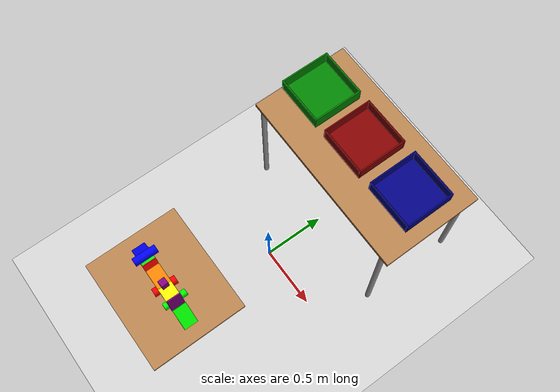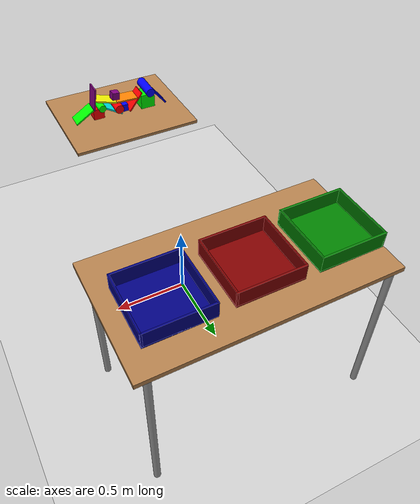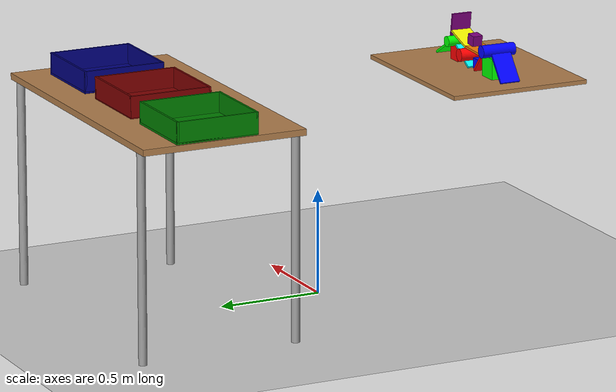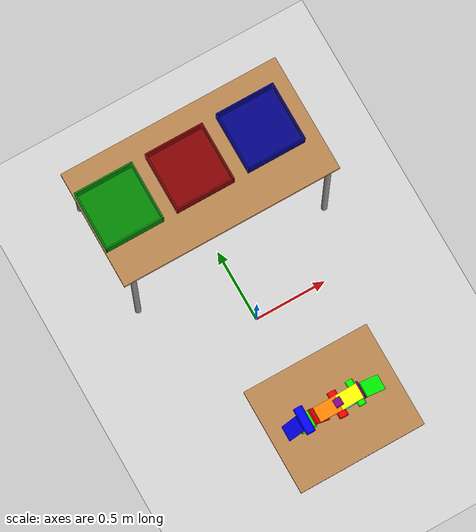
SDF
<sdf version="1.7">
 <world name="default">
  <light name="sun" type="directional">
   <pose>0 0 10 0 -0 0</pose>
   <diffuse>0.8 0.8 0.8 1</diffuse>
   <specular>0.2 0.2 0.2 1</specular>
   <attenuation>
    <range>1000</range>
    <constant>0.9</constant>
    <linear>0.01</linear>
    <quadratic>0.001</quadratic>
   </attenuation>
   <direction>-0.5 0.1 -0.9</direction>
   <spot><inner_angle>0</inner_angle><outer_angle>0</outer_angle><falloff>0</falloff></spot>
  </light>
  <model name="ground_plane">
   <static>1</static>
   <link name="link">
    <collision name="collision">
     <geometry><plane><normal>0 0 1</normal><size>100 100</size></plane></geometry>
     <surface><friction><ode><mu>100</mu><mu2>50</mu2></ode></friction></surface>
    </collision>
    <visual name="visual">
     <cast_shadows>0</cast_shadows>
     <geometry><plane><normal>0 0 1</normal><size>100 100</size></plane></geometry>
     <material>
      <script><uri>file://media/materials/scripts/gazebo.material</uri><name>Gazebo/Grey</name></script>
     </material>
    </visual>
   </link>
  </model>
  <gravity>0 0 -9.8</gravity>
  <magnetic_field>6e-06 2.3e-05 -4.2e-05</magnetic_field>
  <atmosphere type="adiabatic"/>
  <physics type="ode">
   <max_step_size>0.001</max_step_size>
   <real_time_factor>1</real_time_factor>
   <real_time_update_rate>1000</real_time_update_rate>
  </physics>
  <scene><ambient>0.4 0.4 0.4 1</ambient><background>0.7 0.7 0.7 1</background><shadows>1</shadows></scene>
  <audio><device>default</device></audio>
  <spherical_coordinates>
   <surface_model>EARTH_WGS84</surface_model>
   <latitude_deg>0</latitude_deg>
   <longitude_deg>0</longitude_deg>
   <elevation>0</elevation>
   <heading_deg>0</heading_deg>
  </spherical_coordinates>
  <model name="table">
   <static>1</static>
   <link name="link">
    <collision name="surface">
     <pose>0 0 1 0 -0 0</pose>
     <geometry><box><size>1.5 0.8 0.03</size></box></geometry>
     <surface>
      <friction><ode><mu>10</mu><mu2>5</mu2></ode></friction>
      <contact><ode><soft_cfm>0.0001</soft_cfm><soft_erp>0.4</soft_erp><kp>1e+06</kp><kd>10</kd></ode></contact>
     </surface>
    </collision>
    <visual name="visual1">
     <pose>0 0 1 0 -0 0</pose>
     <geometry><box><size>1.5 0.8 0.03</size></box></geometry>
     <material>
      <script><uri>file://media/materials/scripts/gazebo.material</uri><name>Gazebo/Wood</name></script>
     </material>
    </visual>
    <collision name="front_left_leg">
     <pose>0.68 0.38 0.5 0 -0 0</pose>
     <geometry><cylinder><radius>0.02</radius><length>1</length></cylinder></geometry>
    </collision>
    <visual name="front_left_leg">
     <pose>0.68 0.38 0.5 0 -0 0</pose>
     <geometry><cylinder><radius>0.02</radius><length>1</length></cylinder></geometry>
     <material>
      <script><uri>file://media/materials/scripts/gazebo.material</uri><name>Gazebo/Grey</name></script>
     </material>
    </visual>
    <collision name="front_right_leg">
     <pose>0.68 -0.38 0.5 0 -0 0</pose>
     <geometry><cylinder><radius>0.02</radius><length>1</length></cylinder></geometry>
    </collision>
    <visual name="front_right_leg">
     <pose>0.68 -0.38 0.5 0 -0 0</pose>
     <geometry><cylinder><radius>0.02</radius><length>1</length></cylinder></geometry>
     <material>
      <script><uri>file://media/materials/scripts/gazebo.material</uri><name>Gazebo/Grey</name></script>
     </material>
    </visual>
    <collision name="back_right_leg">
     <pose>-0.68 -0.38 0.5 0 -0 0</pose>
     <geometry><cylinder><radius>0.02</radius><length>1</length></cylinder></geometry>
    </collision>
    <visual name="back_right_leg">
     <pose>-0.68 -0.38 0.5 0 -0 0</pose>
     <geometry><cylinder><radius>0.02</radius><length>1</length></cylinder></geometry>
     <material>
      <script><uri>file://media/materials/scripts/gazebo.material</uri><name>Gazebo/Grey</name></script>
     </material>
    </visual>
    <collision name="back_left_leg">
     <pose>-0.68 0.38 0.5 0 -0 0</pose>
     <geometry><cylinder><radius>0.02</radius><length>1</length></cylinder></geometry>
    </collision>
    <visual name="back_left_leg">
     <pose>-0.68 0.38 0.5 0 -0 0</pose>
     <geometry><cylinder><radius>0.02</radius><length>1</length></cylinder></geometry>
     <material>
      <script><uri>file://media/materials/scripts/gazebo.material</uri><name>Gazebo/Grey</name></script>
     </material>
    </visual>
    <inertial>
     <inertia><ixx>1</ixx><ixy>0</ixy><ixz>0</ixz><iyy>1</iyy><iyz>0</iyz><izz>1</izz></inertia>
     <mass>50</mass>
    </inertial>
   </link>
   <pose>0.056083 0.801191 -1.2e-05 0 -0 2.5e-05</pose>
  </model>
  <plugin name="gazebo_link_attacher" filename="libgazebo_link_attacher.so"/>
  <plugin name="gazebo_ros_state" filename="libgazebo_ros_state.so">
   <namespace>/gazebo</namespace>
   <update_rate>100</update_rate>
  </plugin>
  <model name="cube_b">
   <link name="link_2">
    <inertial>
     <mass>2</mass>
     <inertia>
      <ixx>0.00083333</ixx>
      <ixy>0</ixy>
      <ixz>0</ixz>
      <iyy>0.00083333</iyy>
      <iyz>0</iyz>
      <izz>0.00083333</izz>
     </inertia>
    </inertial>
    <visual name="visual">
     <geometry><box><size>0.05 0.05 0.05</size></box></geometry>
     <material>
      <lighting>1</lighting>
      <script><uri>file://media/materials/scripts/gazebo.material</uri><name>Gazebo/Grey</name></script>
      <ambient>0 0 1 1</ambient>
      <diffuse>0 0 1 1</diffuse>
      <specular>0 0 0 1</specular>
      <emissive>0 0 0 1</emissive>
      <shader type="vertex"><normal_map>__default__</normal_map></shader>
     </material>
    </visual>
    <collision name="collision">
     <geometry><box><size>0.05 0.05 0.05</size></box></geometry>
     <surface>
      <friction>
       <ode><mu>0.8</mu><mu2>0.8</mu2><fdir1>0 0 0</fdir1><slip1>0</slip1><slip2>0</slip2></ode>
       <torsional>
        <coefficient>1</coefficient>
        <patch_radius>0</patch_radius>
        <surface_radius>0</surface_radius>
        <use_patch_radius>1</use_patch_radius>
        <ode><slip>0</slip></ode>
       </torsional>
      </friction>
      <bounce><restitution_coefficient>0</restitution_coefficient><threshold>1e+06</threshold></bounce>
      <contact>
       <collide_without_contact>0</collide_without_contact>
       <collide_without_contact_bitmask>1</collide_without_contact_bitmask>
       <collide_bitmask>1</collide_bitmask>
       <ode>
        <soft_cfm>0.0001</soft_cfm>
        <soft_erp>0.4</soft_erp>
        <kp>1e+06</kp>
        <kd>10</kd>
        <max_vel>0.01</max_vel>
        <min_depth>0</min_depth>
       </ode>
      </contact>
     </surface>
    </collision>
   </link>
   <static>0</static>
   <allow_auto_disable>0</allow_auto_disable>
   <pose>0.01211 -0.858134 1.01062 -1.56942 -0.004193 -0.021642</pose>
  </model>
  <model name="cube_g">
   <link name="link_2">
    <inertial>
     <mass>2</mass>
     <inertia>
      <ixx>0.00333333</ixx>
      <iyy>0.00333333</iyy>
      <izz>0.00333333</izz>
      <ixy>0</ixy>
      <ixz>0</ixz>
      <iyz>0</iyz>
     </inertia>
    </inertial>
    <visual name="visual">
     <geometry><box><size>0.1 0.1 0.1</size></box></geometry>
     <material>
      <lighting>1</lighting>
      <script><uri>file://media/materials/scripts/gazebo.material</uri><name>Gazebo/Grey</name></script>
      <ambient>0 1 0 1</ambient>
      <diffuse>0 1 0 1</diffuse>
      <specular>0 0 0 1</specular>
      <emissive>0 0 0 1</emissive>
      <shader type="vertex"><normal_map>__default__</normal_map></shader>
     </material>
    </visual>
    <collision name="collision">
     <geometry><box><size>0.1 0.1 0.1</size></box></geometry>
     <surface>
      <friction>
       <ode><mu>0.8</mu><mu2>0.8</mu2><fdir1>0 0 0</fdir1><slip1>0</slip1><slip2>0</slip2></ode>
       <torsional>
        <coefficient>1</coefficient>
        <patch_radius>0</patch_radius>
        <surface_radius>0</surface_radius>
        <use_patch_radius>1</use_patch_radius>
        <ode><slip>0</slip></ode>
       </torsional>
      </friction>
      <bounce><restitution_coefficient>0</restitution_coefficient><threshold>1e+06</threshold></bounce>
      <contact>
       <collide_without_contact>0</collide_without_contact>
       <collide_without_contact_bitmask>1</collide_without_contact_bitmask>
       <collide_bitmask>1</collide_bitmask>
       <ode>
        <soft_cfm>0.0001</soft_cfm>
        <soft_erp>0.4</soft_erp>
        <kp>1e+06</kp>
        <kd>10</kd>
        <max_vel>0.01</max_vel>
        <min_depth>0</min_depth>
       </ode>
      </contact>
     </surface>
    </collision>
   </link>
   <static>0</static>
   <allow_auto_disable>0</allow_auto_disable>
   <pose>-0.151436 -0.857004 1.03494 0.001101 -0.00428 -0.00783</pose>
  </model>
  <model name="cube_r">
   <link name="link_2">
    <inertial>
     <mass>2</mass>
     <inertia>
      <ixx>0.001875</ixx>
      <ixy>0</ixy>
      <ixz>0</ixz>
      <iyy>0.001875</iyy>
      <iyz>0</iyz>
      <izz>0.001875</izz>
     </inertia>
    </inertial>
    <visual name="visual">
     <geometry><box><size>0.075 0.075 0.075</size></box></geometry>
     <material>
      <lighting>1</lighting>
      <script><uri>file://media/materials/scripts/gazebo.material</uri><name>Gazebo/Grey</name></script>
      <ambient>1 0 0 1</ambient>
      <diffuse>1 0 0 1</diffuse>
      <specular>0 0 0 1</specular>
      <emissive>0 0 0 1</emissive>
      <shader type="vertex"><normal_map>__default__</normal_map></shader>
     </material>
    </visual>
    <collision name="collision">
     <geometry><box><size>0.075 0.075 0.075</size></box></geometry>
     <surface>
      <friction>
       <ode><mu>0.8</mu><mu2>0.8</mu2><fdir1>0 0 0</fdir1><slip1>0</slip1><slip2>0</slip2></ode>
       <torsional>
        <coefficient>1</coefficient>
        <patch_radius>0</patch_radius>
        <surface_radius>0</surface_radius>
        <use_patch_radius>1</use_patch_radius>
        <ode><slip>0</slip></ode>
       </torsional>
      </friction>
      <bounce><restitution_coefficient>0</restitution_coefficient><threshold>1e+06</threshold></bounce>
      <contact>
       <collide_without_contact>0</collide_without_contact>
       <collide_without_contact_bitmask>1</collide_without_contact_bitmask>
       <collide_bitmask>1</collide_bitmask>
       <ode>
        <soft_cfm>0.0001</soft_cfm>
        <soft_erp>0.4</soft_erp>
        <kp>1e+06</kp>
        <kd>10</kd>
        <max_vel>0.01</max_vel>
        <min_depth>0</min_depth>
       </ode>
      </contact>
     </surface>
    </collision>
   </link>
   <static>0</static>
   <allow_auto_disable>0</allow_auto_disable>
   <pose>0.202892 -0.85932 1.02386 1.56725 -0.000335 1.56123</pose>
  </model>
  <model name="cylinder_r">
   <link name="link_0">
    <inertial>
     <mass>0.2</mass>
     <inertia>
      <ixx>0.0005267</ixx>
      <ixy>0</ixy>
      <ixz>0</ixz>
      <iyy>0.0005267</iyy>
      <iyz>0</iyz>
      <izz>9e-05</izz>
     </inertia>
    </inertial>
    <visual name="visual">
     <geometry><cylinder><radius>0.03</radius><length>0.17</length></cylinder></geometry>
     <material>
      <lighting>1</lighting>
      <script><uri>file://media/materials/scripts/gazebo.material</uri><name>Gazebo/Grey</name></script>
      <ambient>1 0 0 1</ambient>
      <diffuse>1 0 0 1</diffuse>
      <specular>0 0 0 1</specular>
      <emissive>0 0 0 1</emissive>
      <shader type="vertex"><normal_map>__default__</normal_map></shader>
     </material>
    </visual>
    <collision name="collision">
     <geometry><cylinder><radius>0.03</radius><length>0.17</length></cylinder></geometry>
     <surface>
      <friction>
       <ode><mu>0.5</mu><mu2>0.5</mu2><fdir1>0 0 0</fdir1><slip1>0</slip1><slip2>0</slip2></ode>
       <torsional>
        <coefficient>1</coefficient>
        <patch_radius>0</patch_radius>
        <surface_radius>0</surface_radius>
        <use_patch_radius>1</use_patch_radius>
        <ode><slip>0</slip></ode>
       </torsional>
      </friction>
      <bounce><restitution_coefficient>0</restitution_coefficient><threshold>1e+06</threshold></bounce>
      <contact>
       <collide_without_contact>0</collide_without_contact>
       <collide_without_contact_bitmask>1</collide_without_contact_bitmask>
       <collide_bitmask>1</collide_bitmask>
       <ode>
        <soft_cfm>0.0001</soft_cfm>
        <soft_erp>0.4</soft_erp>
        <kp>1e+06</kp>
        <kd>10</kd>
        <max_vel>0.01</max_vel>
        <min_depth>0</min_depth>
       </ode>
      </contact>
     </surface>
    </collision>
   </link>
   <static>0</static>
   <allow_auto_disable>0</allow_auto_disable>
   <pose>0.065226 -0.859797 1.04682 -1.57446 -0.043525 3.1054</pose>
  </model>
  <model name="cylinder_b">
   <link name="link_0">
    <inertial>
     <mass>0.2</mass>
     <inertia>
      <ixx>0.0005267</ixx>
      <ixy>0</ixy>
      <ixz>0</ixz>
      <iyy>0.0005267</iyy>
      <iyz>0</iyz>
      <izz>9e-05</izz>
     </inertia>
    </inertial>
    <visual name="visual">
     <geometry><cylinder><radius>0.03</radius><length>0.17</length></cylinder></geometry>
     <material>
      <lighting>1</lighting>
      <ambient>0 0 1 1</ambient>
      <diffuse>0 0 1 1</diffuse>
      <specular>0.1 0.1 0.1 1</specular>
      <emissive>0 0 0 1</emissive>
      <shader type="vertex"><normal_map>__default__</normal_map></shader>
     </material>
    </visual>
    <collision name="collision">
     <geometry><cylinder><radius>0.03</radius><length>0.17</length></cylinder></geometry>
     <surface>
      <friction>
       <ode><mu>0.4</mu><mu2>0.4</mu2><fdir1>0 0 0</fdir1><slip1>0</slip1><slip2>0</slip2></ode>
       <torsional>
        <coefficient>1</coefficient>
        <patch_radius>0</patch_radius>
        <surface_radius>0</surface_radius>
        <use_patch_radius>1</use_patch_radius>
        <ode><slip>0</slip></ode>
       </torsional>
      </friction>
      <bounce><restitution_coefficient>0</restitution_coefficient><threshold>1e+06</threshold></bounce>
      <contact>
       <collide_without_contact>0</collide_without_contact>
       <collide_without_contact_bitmask>1</collide_without_contact_bitmask>
       <collide_bitmask>1</collide_bitmask>
       <ode>
        <soft_cfm>0.0001</soft_cfm>
        <soft_erp>0.4</soft_erp>
        <kp>1e+06</kp>
        <kd>10</kd>
        <max_vel>0.01</max_vel>
        <min_depth>0</min_depth>
       </ode>
      </contact>
     </surface>
    </collision>
   </link>
   <static>0</static>
   <allow_auto_disable>0</allow_auto_disable>
   <pose>-0.161056 -0.853852 1.1149 -1.57428 -1.25124 3.13292</pose>
  </model>
  <model name="cylinder_g">
   <link name="link_0">
    <inertial>
     <mass>0.2</mass>
     <inertia>
      <ixx>0.0005129</ixx>
      <ixy>0</ixy>
      <ixz>0</ixz>
      <iyy>0.0005129</iyy>
      <iyz>0</iyz>
      <izz>6.25e-05</izz>
     </inertia>
    </inertial>
    <visual name="visual">
     <geometry><cylinder><radius>0.025</radius><length>0.17</length></cylinder></geometry>
     <material>
      <lighting>1</lighting>
      <ambient>0 1 0 1</ambient>
      <diffuse>0 1 0 1</diffuse>
      <specular>0.1 0.1 0.1 1</specular>
      <emissive>0 0 0 1</emissive>
      <shader type="vertex"><normal_map>__default__</normal_map></shader>
     </material>
    </visual>
    <collision name="collision">
     <geometry><cylinder><radius>0.025</radius><length>0.17</length></cylinder></geometry>
     <surface>
      <friction>
       <ode><mu>0.5</mu><mu2>0.5</mu2><fdir1>0 0 0</fdir1><slip1>0</slip1><slip2>0</slip2></ode>
       <torsional>
        <coefficient>1</coefficient>
        <patch_radius>0</patch_radius>
        <surface_radius>0</surface_radius>
        <use_patch_radius>1</use_patch_radius>
        <ode><slip>0</slip></ode>
       </torsional>
      </friction>
      <bounce><restitution_coefficient>0</restitution_coefficient><threshold>1e+06</threshold></bounce>
      <contact>
       <collide_without_contact>0</collide_without_contact>
       <collide_without_contact_bitmask>1</collide_without_contact_bitmask>
       <collide_bitmask>1</collide_bitmask>
       <ode>
        <soft_cfm>0.0001</soft_cfm>
        <soft_erp>0.4</soft_erp>
        <kp>1e+06</kp>
        <kd>10</kd>
        <max_vel>0.01</max_vel>
        <min_depth>0</min_depth>
       </ode>
      </contact>
     </surface>
    </collision>
   </link>
   <static>0</static>
   <allow_auto_disable>0</allow_auto_disable>
   <pose>0.190121 -0.856154 1.08633 -1.57287 -0.706034 -3.11656</pose>
  </model>
  <model name="cuboid_r">
   <link name="link">
    <inertial>
     <mass>2</mass>
     <inertia>
      <ixx>0.001683</ixx>
      <iyy>0.003767</iyy>
      <izz>0.005417</izz>
      <ixy>0</ixy>
      <ixz>0</ixz>
      <iyz>0</iyz>
     </inertia>
    </inertial>
    <visual name="visual">
     <geometry><box><size>0.15 0.1 0.01</size></box></geometry>
     <material><ambient>1 0 0 1</ambient><diffuse>1 0 0 1</diffuse><specular>0.1 0.1 0.1 1</specular></material>
    </visual>
    <collision name="collision">
     <geometry><box><size>0.15 0.1 0.01</size></box></geometry>
     <surface>
      <friction>
       <ode><mu>0.6</mu><mu2>0.6</mu2><fdir1>0 0 0</fdir1><slip1>0</slip1><slip2>0</slip2></ode>
       <torsional>
        <coefficient>1</coefficient>
        <patch_radius>0</patch_radius>
        <surface_radius>0</surface_radius>
        <use_patch_radius>1</use_patch_radius>
        <ode><slip>0</slip></ode>
       </torsional>
      </friction>
      <bounce><restitution_coefficient>0</restitution_coefficient><threshold>1e+06</threshold></bounce>
      <contact>
       <collide_without_contact>0</collide_without_contact>
       <collide_without_contact_bitmask>1</collide_without_contact_bitmask>
       <collide_bitmask>1</collide_bitmask>
       <ode>
        <soft_cfm>0.0001</soft_cfm>
        <soft_erp>0.4</soft_erp>
        <kp>1e+06</kp>
        <kd>10</kd>
        <max_vel>0.01</max_vel>
        <min_depth>0</min_depth>
       </ode>
      </contact>
     </surface>
    </collision>
   </link>
   <static>0</static>
   <allow_auto_disable>0</allow_auto_disable>
   <pose>-0.064319 -0.858848 1.04697 -0.006708 -0.889216 -3.14146</pose>
  </model>
  <model name="cuboid_g">
   <link name="link">
    <inertial>
     <mass>2</mass>
     <inertia>
      <ixx>0.001683</ixx>
      <iyy>0.003767</iyy>
      <izz>0.005417</izz>
      <ixy>0</ixy>
      <ixz>0</ixz>
      <iyz>0</iyz>
     </inertia>
    </inertial>
    <visual name="visual">
     <geometry><box><size>0.15 0.1 0.01</size></box></geometry>
     <material><ambient>0 1 0 1</ambient><diffuse>0 1 0 1</diffuse><specular>0.1 0.1 0.1 1</specular></material>
    </visual>
    <collision name="collision">
     <geometry><box><size>0.15 0.1 0.01</size></box></geometry>
     <surface>
      <friction>
       <ode><mu>0.6</mu><mu2>0.6</mu2><fdir1>0 0 0</fdir1><slip1>0</slip1><slip2>0</slip2></ode>
       <torsional>
        <coefficient>1</coefficient>
        <patch_radius>0</patch_radius>
        <surface_radius>0</surface_radius>
        <use_patch_radius>1</use_patch_radius>
        <ode><slip>0</slip></ode>
       </torsional>
      </friction>
      <bounce><restitution_coefficient>0</restitution_coefficient><threshold>1e+06</threshold></bounce>
      <contact>
       <collide_without_contact>0</collide_without_contact>
       <collide_without_contact_bitmask>1</collide_without_contact_bitmask>
       <collide_bitmask>1</collide_bitmask>
       <ode>
        <soft_cfm>0.0001</soft_cfm>
        <soft_erp>0.4</soft_erp>
        <kp>1e+06</kp>
        <kd>10</kd>
        <max_vel>0.01</max_vel>
        <min_depth>0</min_depth>
       </ode>
      </contact>
     </surface>
    </collision>
   </link>
   <static>0</static>
   <allow_auto_disable>0</allow_auto_disable>
   <pose>0.302662 -0.861741 1.02991 -0.001399 -0.539757 3.13451</pose>
  </model>
  <model name="cuboid_b">
   <link name="link">
    <inertial>
     <mass>2</mass>
     <inertia>
      <ixx>0.001683</ixx>
      <iyy>0.003767</iyy>
      <izz>0.005417</izz>
      <ixy>0</ixy>
      <ixz>0</ixz>
      <iyz>0</iyz>
     </inertia>
    </inertial>
    <visual name="visual">
     <geometry><box><size>0.15 0.1 0.01</size></box></geometry>
     <material><ambient>0 0 1 1</ambient><diffuse>0 0 1 1</diffuse><specular>0.1 0.1 0.1 1</specular></material>
    </visual>
    <collision name="collision">
     <geometry><box><size>0.15 0.1 0.01</size></box></geometry>
     <surface>
      <friction>
       <ode><mu>0.6</mu><mu2>0.6</mu2><fdir1>0 0 0</fdir1><slip1>0</slip1><slip2>0</slip2></ode>
       <torsional>
        <coefficient>1</coefficient>
        <patch_radius>0</patch_radius>
        <surface_radius>0</surface_radius>
        <use_patch_radius>1</use_patch_radius>
        <ode><slip>0</slip></ode>
       </torsional>
      </friction>
      <bounce><restitution_coefficient>0</restitution_coefficient><threshold>1e+06</threshold></bounce>
      <contact>
       <collide_without_contact>0</collide_without_contact>
       <collide_without_contact_bitmask>1</collide_without_contact_bitmask>
       <collide_bitmask>1</collide_bitmask>
       <ode>
        <soft_cfm>0.0001</soft_cfm>
        <soft_erp>0.4</soft_erp>
        <kp>1e+06</kp>
        <kd>10</kd>
        <max_vel>0.01</max_vel>
        <min_depth>0</min_depth>
       </ode>
      </contact>
     </surface>
    </collision>
   </link>
   <static>0</static>
   <allow_auto_disable>0</allow_auto_disable>
   <pose>-0.238964 -0.856536 1.04608 -0.00182 0.895912 3.13236</pose>
  </model>
  <model name="cuboid_purple">
   <link name="link">
    <inertial>
     <mass>2</mass>
     <inertia>
      <ixx>0.001683</ixx>
      <iyy>0.003767</iyy>
      <izz>0.005417</izz>
      <ixy>0</ixy>
      <ixz>0</ixz>
      <iyz>0</iyz>
     </inertia>
    </inertial>
    <visual name="visual">
     <geometry><box><size>0.15 0.1 0.01</size></box></geometry>
     <material>
      <ambient>0.5 0 0.5 1</ambient>
      <diffuse>0.5 0 0.5 1</diffuse>
      <specular>0.1 0.1 0.1 1</specular>
     </material>
    </visual>
    <collision name="collision">
     <geometry><box><size>0.15 0.1 0.01</size></box></geometry>
     <surface>
      <friction>
       <ode><mu>0.6</mu><mu2>0.6</mu2><fdir1>0 0 0</fdir1><slip1>0</slip1><slip2>0</slip2></ode>
       <torsional>
        <coefficient>1</coefficient>
        <patch_radius>0</patch_radius>
        <surface_radius>0</surface_radius>
        <use_patch_radius>1</use_patch_radius>
        <ode><slip>0</slip></ode>
       </torsional>
      </friction>
      <bounce><restitution_coefficient>0</restitution_coefficient><threshold>1e+06</threshold></bounce>
      <contact>
       <collide_without_contact>0</collide_without_contact>
       <collide_without_contact_bitmask>1</collide_without_contact_bitmask>
       <collide_bitmask>1</collide_bitmask>
       <ode>
        <soft_cfm>0.0001</soft_cfm>
        <soft_erp>0.4</soft_erp>
        <kp>1e+06</kp>
        <kd>10</kd>
        <max_vel>0.01</max_vel>
        <min_depth>0</min_depth>
       </ode>
      </contact>
     </surface>
    </collision>
   </link>
   <static>0</static>
   <allow_auto_disable>0</allow_auto_disable>
   <pose>0.220616 -0.863081 1.13637 -0.003801 -1.43374 3.13504</pose>
  </model>
  <model name="cuboid_orange">
   <link name="link">
    <inertial>
     <mass>2</mass>
     <inertia>
      <ixx>0.001683</ixx>
      <iyy>0.003767</iyy>
      <izz>0.005417</izz>
      <ixy>0</ixy>
      <ixz>0</ixz>
      <iyz>0</iyz>
     </inertia>
    </inertial>
    <visual name="visual">
     <geometry><box><size>0.15 0.1 0.01</size></box></geometry>
     <material>
      <ambient>1 0.5 0 1</ambient>
      <diffuse>1 0.5 0 1</diffuse>
      <specular>0.1 0.1 0.1 1</specular>
     </material>
    </visual>
    <collision name="collision">
     <geometry><box><size>0.15 0.1 0.01</size></box></geometry>
     <surface>
      <friction>
       <ode><mu>0.6</mu><mu2>0.6</mu2><fdir1>0 0 0</fdir1><slip1>0</slip1><slip2>0</slip2></ode>
       <torsional>
        <coefficient>1</coefficient>
        <patch_radius>0</patch_radius>
        <surface_radius>0</surface_radius>
        <use_patch_radius>1</use_patch_radius>
        <ode><slip>0</slip></ode>
       </torsional>
      </friction>
      <bounce><restitution_coefficient>0</restitution_coefficient><threshold>1e+06</threshold></bounce>
      <contact>
       <collide_without_contact>0</collide_without_contact>
       <collide_without_contact_bitmask>1</collide_without_contact_bitmask>
       <collide_bitmask>1</collide_bitmask>
       <ode>
        <soft_cfm>0.0001</soft_cfm>
        <soft_erp>0.4</soft_erp>
        <kp>1e+06</kp>
        <kd>10</kd>
        <max_vel>0.01</max_vel>
        <min_depth>0</min_depth>
       </ode>
      </contact>
     </surface>
    </collision>
   </link>
   <static>0</static>
   <allow_auto_disable>0</allow_auto_disable>
   <pose>-0.00294 -0.859409 1.07921 3.14158 -0.038817 -0.009195</pose>
  </model>
  <model name="cuboid_yellow">
   <link name="link">
    <inertial>
     <mass>2</mass>
     <inertia>
      <ixx>0.001683</ixx>
      <iyy>0.003767</iyy>
      <izz>0.005417</izz>
      <ixy>0</ixy>
      <ixz>0</ixz>
      <iyz>0</iyz>
     </inertia>
    </inertial>
    <visual name="visual">
     <geometry><box><size>0.15 0.1 0.01</size></box></geometry>
     <material><ambient>1 1 0 1</ambient><diffuse>1 1 0 1</diffuse><specular>0.1 0.1 0.1 1</specular></material>
    </visual>
    <collision name="collision">
     <geometry><box><size>0.15 0.1 0.01</size></box></geometry>
     <surface>
      <friction>
       <ode><mu>0.6</mu><mu2>0.6</mu2><fdir1>0 0 0</fdir1><slip1>0</slip1><slip2>0</slip2></ode>
       <torsional>
        <coefficient>1</coefficient>
        <patch_radius>0</patch_radius>
        <surface_radius>0</surface_radius>
        <use_patch_radius>1</use_patch_radius>
        <ode><slip>0</slip></ode>
       </torsional>
      </friction>
      <bounce><restitution_coefficient>0</restitution_coefficient><threshold>1e+06</threshold></bounce>
      <contact>
       <collide_without_contact>0</collide_without_contact>
       <collide_without_contact_bitmask>1</collide_without_contact_bitmask>
       <collide_bitmask>1</collide_bitmask>
       <ode>
        <soft_cfm>0.0001</soft_cfm>
        <soft_erp>0.4</soft_erp>
        <kp>1e+06</kp>
        <kd>10</kd>
        <max_vel>0.01</max_vel>
        <min_depth>0</min_depth>
       </ode>
      </contact>
     </surface>
    </collision>
   </link>
   <static>0</static>
   <allow_auto_disable>0</allow_auto_disable>
   <pose>0.144765 -0.861155 1.10308 -3.12814 -0.314149 -0.012771</pose>
  </model>
  <model name="cuboid_cyan">
   <link name="link">
    <inertial>
     <mass>2</mass>
     <inertia>
      <ixx>0.001683</ixx>
      <iyy>0.003767</iyy>
      <izz>0.005417</izz>
      <ixy>0</ixy>
      <ixz>0</ixz>
      <iyz>0</iyz>
     </inertia>
    </inertial>
    <visual name="visual">
     <geometry><box><size>0.15 0.1 0.01</size></box></geometry>
     <material><ambient>0 1 1 1</ambient><diffuse>0 1 1 1</diffuse><specular>0.1 0.1 0.1 1</specular></material>
    </visual>
    <collision name="collision">
     <geometry><box><size>0.15 0.1 0.01</size></box></geometry>
     <surface>
      <friction>
       <ode><mu>0.6</mu><mu2>0.6</mu2><fdir1>0 0 0</fdir1><slip1>0</slip1><slip2>0</slip2></ode>
       <torsional>
        <coefficient>1</coefficient>
        <patch_radius>0</patch_radius>
        <surface_radius>0</surface_radius>
        <use_patch_radius>1</use_patch_radius>
        <ode><slip>0</slip></ode>
       </torsional>
      </friction>
      <bounce><restitution_coefficient>0</restitution_coefficient><threshold>1e+06</threshold></bounce>
      <contact>
       <collide_without_contact>0</collide_without_contact>
       <collide_without_contact_bitmask>1</collide_without_contact_bitmask>
       <collide_bitmask>1</collide_bitmask>
       <ode>
        <soft_cfm>0.0001</soft_cfm>
        <soft_erp>0.4</soft_erp>
        <kp>1e+06</kp>
        <kd>10</kd>
        <max_vel>0.01</max_vel>
        <min_depth>0</min_depth>
       </ode>
      </contact>
     </surface>
    </collision>
   </link>
   <static>0</static>
   <allow_auto_disable>0</allow_auto_disable>
   <pose>0.103675 -0.859771 1.02926 -3.14101 -0.551911 -0.021755</pose>
  </model>
  <model name="workspace">
   <link name="link">
    <inertial>
     <mass>100</mass>
     <inertia><ixx>6.02417</ixx><ixy>0</ixy><ixz>0</ixz><iyy>4.08667</iyy><iyz>0</iyz><izz>10.1042</izz></inertia>
    </inertial>
    <visual name="visual">
     <geometry><box><size>0.7 0.85 0.02</size></box></geometry>
     <material>
      <script><name>Gazebo/Wood</name><uri>file://media/materials/scripts/gazebo.material</uri></script>
      <shader type="pixel"/>
     </material>
    </visual>
    <collision name="collision">
     <geometry><box><size>0.7 0.85 0.02</size></box></geometry>
     <surface>
      <friction>
       <ode><mu>100</mu><mu2>50</mu2><fdir1>0 0 0</fdir1><slip1>0</slip1><slip2>0</slip2></ode>
       <torsional>
        <coefficient>1</coefficient>
        <patch_radius>0</patch_radius>
        <surface_radius>0</surface_radius>
        <use_patch_radius>1</use_patch_radius>
        <ode><slip>0</slip></ode>
       </torsional>
      </friction>
      <bounce><restitution_coefficient>0</restitution_coefficient><threshold>1e+06</threshold></bounce>
      <contact>
       <collide_without_contact>0</collide_without_contact>
       <collide_without_contact_bitmask>1</collide_without_contact_bitmask>
       <collide_bitmask>1</collide_bitmask>
       <ode>
        <soft_cfm>0.0001</soft_cfm>
        <soft_erp>0.2</soft_erp>
        <kp>1e+13</kp>
        <kd>10</kd>
        <max_vel>0.01</max_vel>
        <min_depth>0</min_depth>
       </ode>
       <bullet>
        <split_impulse>1</split_impulse>
        <split_impulse_penetration_threshold>-0.01</split_impulse_penetration_threshold>
        <soft_cfm>0</soft_cfm>
        <soft_erp>0.2</soft_erp>
        <kp>1e+13</kp>
        <kd>1</kd>
       </bullet>
      </contact>
     </surface>
    </collision>
   </link>
   <static>1</static>
   <pose>0.0416 -0.859914 0.975746 -0.004154 -0.001127 1.57039</pose>
  </model>
  <model name="tray_red">
   <static>1</static>
   <link name="link">
    <collision name="base_collision">
     <pose>0 0 0.01 0 -0 0</pose>
     <geometry><box><size>0.4 0.4 0.01</size></box></geometry>
     <surface><contact><ode><mu>50</mu><mu2>50</mu2></ode></contact></surface>
    </collision>
    <visual name="base_visual">
     <pose>0 0 0.01 0 -0 0</pose>
     <geometry><box><size>0.4 0.4 0.01</size></box></geometry>
     <material>
      <ambient>1 0 0 1</ambient>
      <diffuse>0.5 0 0 1</diffuse>
      <specular>0 0 0 1</specular>
      <emissive>0 0 0 1</emissive>
      <shininess>100</shininess>
     </material>
    </visual>
    <collision name="front_collision">
     <pose>0 0.195 0.06 0 -0 0</pose>
     <geometry><box><size>0.4 0.01 0.1</size></box></geometry>
    </collision>
    <visual name="front_visual">
     <pose>0 0.195 0.06 0 -0 0</pose>
     <geometry><box><size>0.4 0.01 0.1</size></box></geometry>
     <material>
      <ambient>1 0 0 1</ambient>
      <diffuse>0.5 0 0 1</diffuse>
      <specular>0 0 0 1</specular>
      <emissive>0 0 0 1</emissive>
     </material>
    </visual>
    <collision name="back_collision">
     <pose>0 -0.195 0.06 0 -0 0</pose>
     <geometry><box><size>0.4 0.01 0.1</size></box></geometry>
    </collision>
    <visual name="back_visual">
     <pose>0 -0.195 0.06 0 -0 0</pose>
     <geometry><box><size>0.4 0.01 0.1</size></box></geometry>
     <material>
      <ambient>1 0 0 1</ambient>
      <diffuse>0.5 0 0 1</diffuse>
      <specular>0 0 0 1</specular>
      <emissive>0 0 0 1</emissive>
     </material>
    </visual>
    <collision name="left_collision">
     <pose>0.195 0 0.06 0 -0 0</pose>
     <geometry><box><size>0.01 0.4 0.1</size></box></geometry>
    </collision>
    <visual name="left_visual">
     <pose>0.195 0 0.06 0 -0 0</pose>
     <geometry><box><size>0.01 0.4 0.1</size></box></geometry>
     <material>
      <ambient>1 0 0 1</ambient>
      <diffuse>0.5 0 0 1</diffuse>
      <specular>0 0 0 1</specular>
      <emissive>0 0 0 1</emissive>
     </material>
    </visual>
    <collision name="right_collision">
     <pose>-0.195 0 0.06 0 -0 0</pose>
     <geometry><box><size>0.01 0.4 0.1</size></box></geometry>
    </collision>
    <visual name="right_visual">
     <pose>-0.195 0 0.06 0 -0 0</pose>
     <geometry><box><size>0.01 0.4 0.1</size></box></geometry>
     <material>
      <ambient>1 0 0 1</ambient>
      <diffuse>0.5 0 0 1</diffuse>
      <specular>0 0 0 1</specular>
      <emissive>0 0 0 1</emissive>
     </material>
    </visual>
    <inertial>
     <inertia><ixx>1</ixx><ixy>0</ixy><ixz>0</ixz><iyy>1</iyy><iyz>0</iyz><izz>1</izz></inertia>
     <mass>1</mass>
    </inertial>
   </link>
   <pose>0.003367 0.836815 1.00999 0 -0 0</pose>
  </model>
  <model name="tray_green">
   <static>1</static>
   <link name="link">
    <collision name="base_collision">
     <pose>0 0 0.01 0 -0 0</pose>
     <geometry><box><size>0.4 0.4 0.01</size></box></geometry>
     <surface><contact><ode><mu>50</mu><mu2>50</mu2></ode></contact></surface>
    </collision>
    <visual name="base_visual">
     <pose>0 0 0.01 0 -0 0</pose>
     <geometry><box><size>0.4 0.4 0.01</size></box></geometry>
     <material><ambient>0 1 0 1</ambient><diffuse>0 0.5 0 1</diffuse></material>
    </visual>
    <collision name="front_collision">
     <pose>0 0.195 0.06 0 -0 0</pose>
     <geometry><box><size>0.4 0.01 0.1</size></box></geometry>
    </collision>
    <visual name="front_visual">
     <pose>0 0.195 0.06 0 -0 0</pose>
     <geometry><box><size>0.4 0.01 0.1</size></box></geometry>
     <material><ambient>0 1 0 1</ambient><diffuse>0 0.5 0 1</diffuse></material>
    </visual>
    <collision name="back_collision">
     <pose>0 -0.195 0.06 0 -0 0</pose>
     <geometry><box><size>0.4 0.01 0.1</size></box></geometry>
    </collision>
    <visual name="back_visual">
     <pose>0 -0.195 0.06 0 -0 0</pose>
     <geometry><box><size>0.4 0.01 0.1</size></box></geometry>
     <material><ambient>0 1 0 1</ambient><diffuse>0 0.5 0 1</diffuse></material>
    </visual>
    <collision name="left_collision">
     <pose>0.195 0 0.06 0 -0 0</pose>
     <geometry><box><size>0.01 0.4 0.1</size></box></geometry>
    </collision>
    <visual name="left_visual">
     <pose>0.195 0 0.06 0 -0 0</pose>
     <geometry><box><size>0.01 0.4 0.1</size></box></geometry>
     <material><ambient>0 1 0 1</ambient><diffuse>0 0.5 0 1</diffuse></material>
    </visual>
    <collision name="right_collision">
     <pose>-0.195 0 0.06 0 -0 0</pose>
     <geometry><box><size>0.01 0.4 0.1</size></box></geometry>
    </collision>
    <visual name="right_visual">
     <pose>-0.195 0 0.06 0 -0 0</pose>
     <geometry><box><size>0.01 0.4 0.1</size></box></geometry>
     <material><ambient>0 1 0 1</ambient><diffuse>0 0.5 0 1</diffuse></material>
    </visual>
    <inertial>
     <inertia><ixx>1</ixx><ixy>0</ixy><ixz>0</ixz><iyy>1</iyy><iyz>0</iyz><izz>1</izz></inertia>
     <mass>1</mass>
    </inertial>
   </link>
   <pose>-0.487214 0.834657 1.00999 0 -0 0</pose>
  </model>
  <model name="tray_blue">
   <static>1</static>
   <link name="link">
    <collision name="base_collision">
     <pose>0 0 0.01 0 -0 0</pose>
     <geometry><box><size>0.4 0.4 0.01</size></box></geometry>
     <surface><contact><ode><mu>50</mu><mu2>50</mu2></ode></contact></surface>
    </collision>
    <visual name="base_visual">
     <pose>0 0 0.01 0 -0 0</pose>
     <geometry><box><size>0.4 0.4 0.01</size></box></geometry>
     <material><ambient>0 0 1 1</ambient><diffuse>0 0 0.5 1</diffuse></material>
    </visual>
    <collision name="front_collision">
     <pose>0 0.195 0.06 0 -0 0</pose>
     <geometry><box><size>0.4 0.01 0.1</size></box></geometry>
    </collision>
    <visual name="front_visual">
     <pose>0 0.195 0.06 0 -0 0</pose>
     <geometry><box><size>0.4 0.01 0.1</size></box></geometry>
     <material><ambient>0 0 1 1</ambient><diffuse>0 0 0.5 1</diffuse></material>
    </visual>
    <collision name="back_collision">
     <pose>0 -0.195 0.06 0 -0 0</pose>
     <geometry><box><size>0.4 0.01 0.1</size></box></geometry>
    </collision>
    <visual name="back_visual">
     <pose>0 -0.195 0.06 0 -0 0</pose>
     <geometry><box><size>0.4 0.01 0.1</size></box></geometry>
     <material><ambient>0 0 1 1</ambient><diffuse>0 0 0.5 1</diffuse></material>
    </visual>
    <collision name="left_collision">
     <pose>0.195 0 0.06 0 -0 0</pose>
     <geometry><box><size>0.01 0.4 0.1</size></box></geometry>
    </collision>
    <visual name="left_visual">
     <pose>0.195 0 0.06 0 -0 0</pose>
     <geometry><box><size>0.01 0.4 0.1</size></box></geometry>
     <material><ambient>0 0 1 1</ambient><diffuse>0 0 0.5 1</diffuse></material>
    </visual>
    <collision name="right_collision">
     <pose>-0.195 0 0.06 0 -0 0</pose>
     <geometry><box><size>0.01 0.4 0.1</size></box></geometry>
    </collision>
    <visual name="right_visual">
     <pose>-0.195 0 0.06 0 -0 0</pose>
     <geometry><box><size>0.01 0.4 0.1</size></box></geometry>
     <material><ambient>0 0 1 1</ambient><diffuse>0 0 0.5 1</diffuse></material>
    </visual>
    <inertial>
     <inertia><ixx>1</ixx><ixy>0</ixy><ixz>0</ixz><iyy>1</iyy><iyz>0</iyz><izz>1</izz></inertia>
     <mass>1</mass>
    </inertial>
   </link>
   <pose>0.500589 0.844197 1.00999 0 -0 0</pose>
  </model>
  <model name="cube_purple">
   <link name="link_2">
    <inertial>
     <mass>2</mass>
     <inertia>
      <ixx>0.00083333</ixx>
      <ixy>0</ixy>
      <ixz>0</ixz>
      <iyy>0.00083333</iyy>
      <iyz>0</iyz>
      <izz>0.00083333</izz>
     </inertia>
    </inertial>
    <visual name="visual">
     <geometry><box><size>0.05 0.05 0.05</size></box></geometry>
     <material>
      <lighting>1</lighting>
      <script><uri>file://media/materials/scripts/gazebo.material</uri><name>Gazebo/Grey</name></script>
      <ambient>0.5 0 0.5 1</ambient>
      <diffuse>0.5 0 0.5 1</diffuse>
      <specular>0.1 0.1 0.1 1</specular>
      <emissive>0 0 0 1</emissive>
      <shader type="vertex"><normal_map>__default__</normal_map></shader>
     </material>
    </visual>
    <collision name="collision">
     <geometry><box><size>0.05 0.05 0.05</size></box></geometry>
     <surface>
      <friction>
       <ode><mu>0.8</mu><mu2>0.8</mu2><fdir1>0 0 0</fdir1><slip1>0</slip1><slip2>0</slip2></ode>
       <torsional>
        <coefficient>1</coefficient>
        <patch_radius>0</patch_radius>
        <surface_radius>0</surface_radius>
        <use_patch_radius>1</use_patch_radius>
        <ode><slip>0</slip></ode>
       </torsional>
      </friction>
      <bounce><restitution_coefficient>0</restitution_coefficient><threshold>1e+06</threshold></bounce>
      <contact>
       <collide_without_contact>0</collide_without_contact>
       <collide_without_contact_bitmask>1</collide_without_contact_bitmask>
       <collide_bitmask>1</collide_bitmask>
       <ode>
        <soft_cfm>0.0001</soft_cfm>
        <soft_erp>0.4</soft_erp>
        <kp>1e+06</kp>
        <kd>10</kd>
        <max_vel>0.01</max_vel>
        <min_depth>0</min_depth>
       </ode>
      </contact>
     </surface>
    </collision>
   </link>
   <static>0</static>
   <allow_auto_disable>0</allow_auto_disable>
   <pose>0.067095 -0.859086 1.1139 -1.5766 -0.12366 0.050744</pose>
  </model>
 </world>
</sdf>
